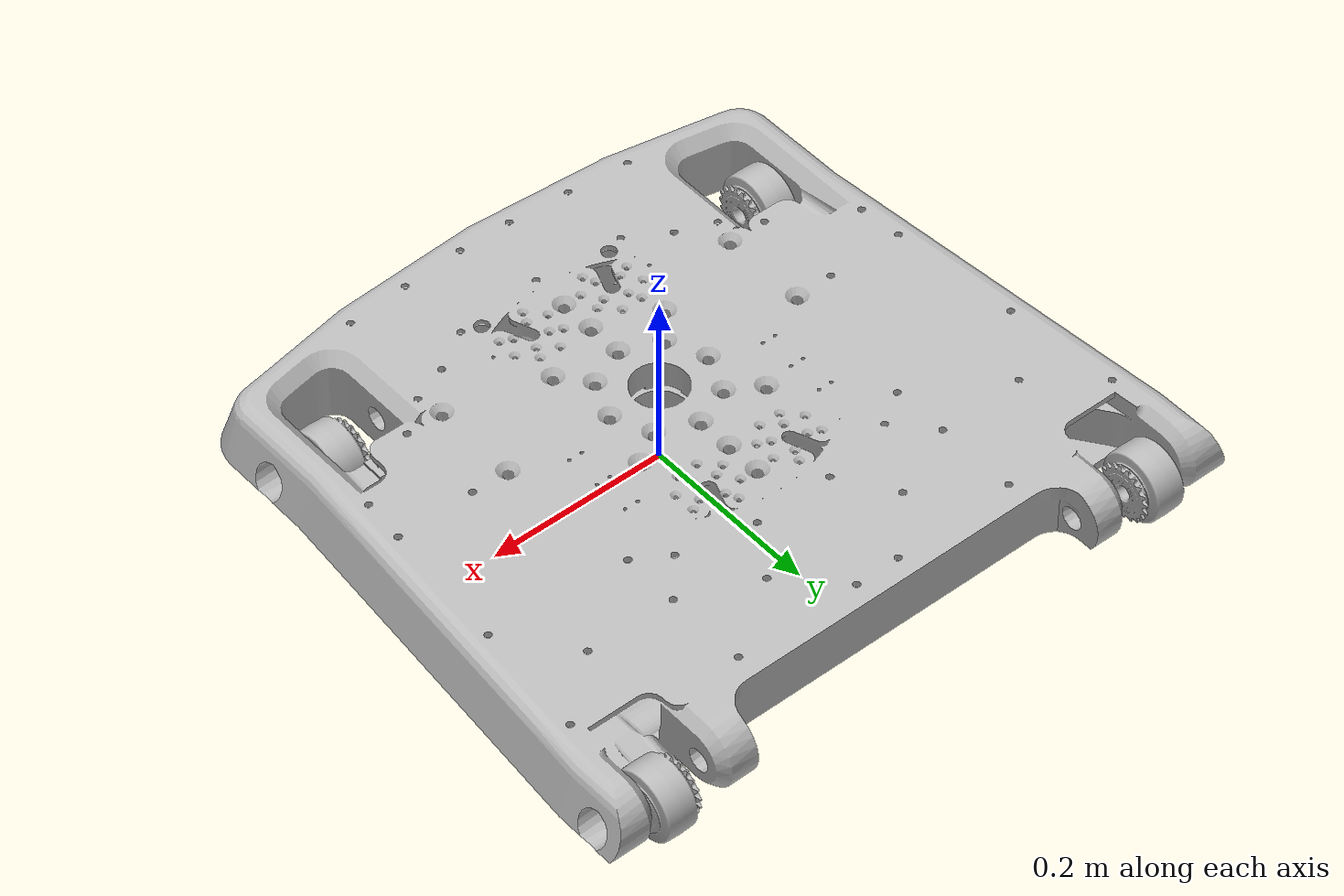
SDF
<?xml version='1.0'?>
<sdf version="1.6">
  <model name="drive_base">
    <link name="drive_base_link">
      <pose>0 0.380 0.020 1.5708 0 0</pose>
      <inertial>
        <mass>68.989</mass>
        <inertia>
          <ixx>2.461</ixx>
          <ixy>0</ixy>
          <ixz>0</ixz>
          <iyy>5.161</iyy>
          <iyz>0</iyz>
          <izz>2.804</izz>
        </inertia>
      </inertial>
      <visual name="drive_base_visual">
        <geometry>
          <mesh>
            <uri>file://meshes/BS-V2-Chassis.stl</uri>
            <scale>0.001 0.001 0.001</scale>
          </mesh>
        </geometry>
      </visual>
      <collision name="drive_base_collision">
        <geometry>
          <mesh>
            <uri>file://meshes/BS-V2-Chassis.stl</uri>
            <scale>0.001 0.001 0.001</scale>
          </mesh>
        </geometry>
      </collision>
      <sensor name='chassis_imu' type='imu'>
      </sensor>
    </link>
    <include>
      <uri>model://bloodsport_wheel</uri>
      <pose>-0.29 0.35 0.045 0 3.1415 0</pose>
      <name>wheel_front_left</name>
    </include>
    <include>
      <uri>model://bloodsport_wheel</uri>
      <pose>0.29 0.35 0.045 0 0 0</pose>
      <name>wheel_front_right</name>
    </include>
    <include>
      <uri>model://bloodsport_wheel</uri>
      <pose>-0.26 -0.16 0.045 0 3.1415 0</pose>
      <name>wheel_back_left</name>
    </include>
    <include>
      <uri>model://bloodsport_wheel</uri>
      <pose>0.26 -0.16 0.045 0 0 0</pose>
      <name>wheel_back_right</name>
    </include>
    <joint name="wheel_front_left_joint" type="fixed">
      <parent>drive_base_link</parent>
      <child>wheel_front_left::wheel_link</child>
    </joint>
    <joint name="wheel_front_right_joint" type="fixed">
      <parent>drive_base_link</parent>
      <child>wheel_front_right::wheel_link</child>
    </joint>
    <joint name="wheel_back_left_joint" type="fixed">
      <parent>drive_base_link</parent>
      <child>wheel_back_left::wheel_link</child>
    </joint>
    <joint name="wheel_back_right_joint" type="fixed">
      <parent>drive_base_link</parent>
      <child>wheel_back_right::wheel_link</child>
    </joint>
  </model>
</sdf>

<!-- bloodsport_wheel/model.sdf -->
<sdf version="1.6">
  <model name="wheel">
    <pose>-0.073 -0.012 -0.085 0 0 0</pose>
    <link name="wheel_link">
      <inertial>
        <mass>0.411</mass>
        <inertia>
          <ixx>0.002018</ixx>
          <ixy>0</ixy>
          <ixz>0</ixz>
          <iyy>0.001811</iyy>
          <iyz>0</iyz>
          <izz>0.001811</izz>
        </inertia>
      </inertial>
      <visual name="wheel_visual">
        <geometry>
          <mesh>
            <uri>file://meshes/BSWheel.stl</uri>
            <scale>0.001 0.001 0.001</scale>
          </mesh>
        </geometry>
        <pose>-0.073 -0.012 -0.085 0 0 0</pose>
      </visual>

      <!-- "Fake" collision box -->
      <collision name="wheel_collision">
        <geometry>
          <cylinder>
            <radius>0.038</radius>
            <length>0.044</length>
          </cylinder>
        </geometry>
        <pose>0 0 0 1.57 0 0</pose>
      </collision>

      <!-- "True" collision box, however makes things VERY laggy.
           Use the optimized cylinder collision box above -->

    </link>
  </model>
</sdf>
